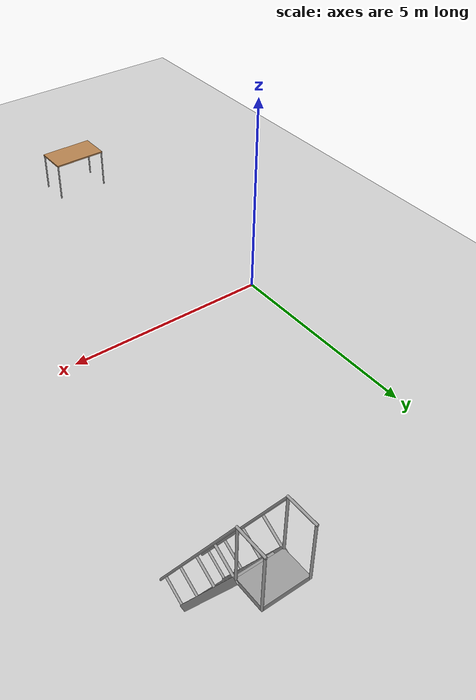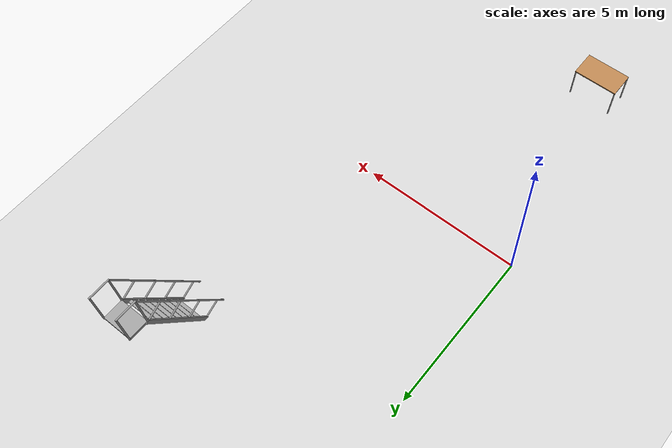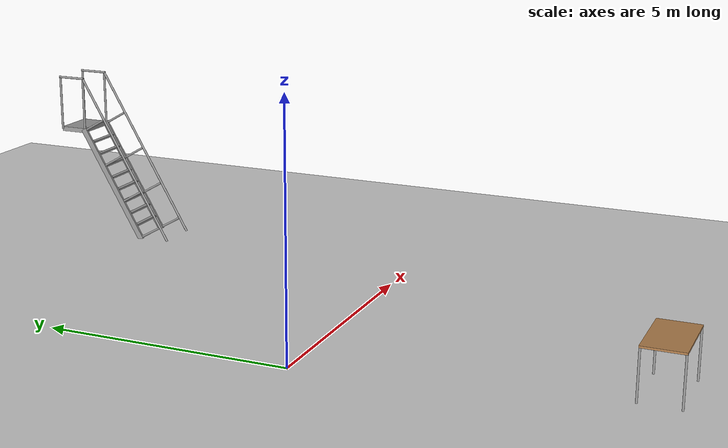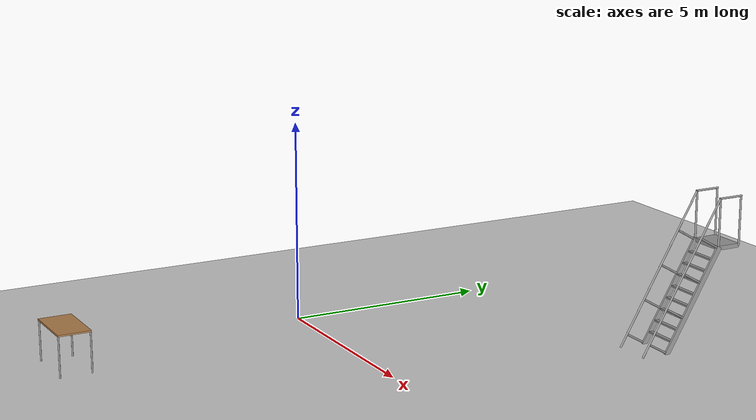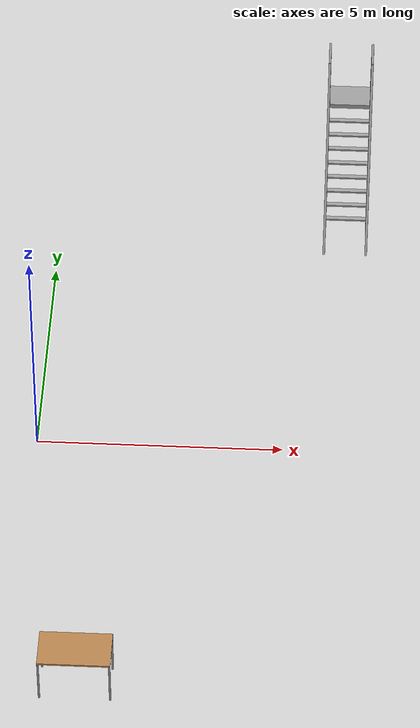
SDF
<sdf version="1.6">
 <world name="default">
  <light name="sun" type="directional">
   <pose>0 0 10 0 -0 0</pose>
   <diffuse>0.8 0.8 0.8 1</diffuse>
   <specular>0.1 0.1 0.1 1</specular>
   <attenuation>
    <range>1000</range>
    <constant>0.9</constant>
    <linear>0.01</linear>
    <quadratic>0.001</quadratic>
   </attenuation>
   <direction>-0.5 0.5 -1</direction>
  </light>
  <model name="ground_plane">
   <static>1</static>
   <link name="link">
    <collision name="collision">
     <geometry><plane><normal>0 0 1</normal><size>100 100</size></plane></geometry>
     <surface><friction><ode><mu>100</mu><mu2>50</mu2></ode></friction></surface>
    </collision>
    <visual name="visual">
     <cast_shadows>0</cast_shadows>
     <geometry><plane><normal>0 0 1</normal><size>100 100</size></plane></geometry>
     <material>
      <script><uri>file://media/materials/scripts/gazebo.material</uri><name>Gazebo/Grey</name></script>
     </material>
    </visual>
   </link>
  </model>
  <gravity>0 0 -9.8</gravity>
  <magnetic_field>6e-06 2.3e-05 -4.2e-05</magnetic_field>
  <atmosphere type="adiabatic"/>
  <physics name="default_physics" default="0" type="ode">
   <max_step_size>0.001</max_step_size>
   <real_time_factor>1</real_time_factor>
   <real_time_update_rate>1000</real_time_update_rate>
  </physics>
  <scene><ambient>0.4 0.4 0.4 1</ambient><background>0.7 0.7 0.7 1</background><shadows>1</shadows></scene>
  <spherical_coordinates>
   <surface_model>EARTH_WGS84</surface_model>
   <latitude_deg>0</latitude_deg>
   <longitude_deg>0</longitude_deg>
   <elevation>0</elevation>
   <heading_deg>0</heading_deg>
  </spherical_coordinates>
  <model name="table">
   <static>0</static>
   <link name="link">
    <collision name="surface">
     <pose>0 0 1 0 -0 0</pose>
     <geometry><box><size>1.5 0.8 0.03</size></box></geometry>
     <surface><friction><ode><mu>0.6</mu><mu2>0.6</mu2></ode></friction></surface>
    </collision>
    <visual name="visual1">
     <pose>0 0 1 0 -0 0</pose>
     <geometry><box><size>1.4 0.8 0.04</size></box></geometry>
     <material>
      <script><uri>file://media/materials/scripts/gazebo.material</uri><name>Gazebo/Wood</name></script>
     </material>
    </visual>
    <collision name="front_left_leg">
     <pose>0.68 0.38 0.5 0 -0 0</pose>
     <geometry><cylinder><radius>0.02</radius><length>1</length></cylinder></geometry>
    </collision>
    <visual name="front_left_leg">
     <pose>0.68 0.38 0.5 0 -0 0</pose>
     <geometry><cylinder><radius>0.02</radius><length>1</length></cylinder></geometry>
     <material>
      <script><uri>file://media/materials/scripts/gazebo.material</uri><name>Gazebo/Grey</name></script>
     </material>
    </visual>
    <collision name="front_right_leg">
     <pose>0.68 -0.38 0.5 0 -0 0</pose>
     <geometry><cylinder><radius>0.02</radius><length>1</length></cylinder></geometry>
    </collision>
    <visual name="front_right_leg">
     <pose>0.68 -0.38 0.5 0 -0 0</pose>
     <geometry><cylinder><radius>0.02</radius><length>1</length></cylinder></geometry>
     <material>
      <script><uri>file://media/materials/scripts/gazebo.material</uri><name>Gazebo/Grey</name></script>
     </material>
    </visual>
    <collision name="back_right_leg">
     <pose>-0.68 -0.38 0.5 0 -0 0</pose>
     <geometry><cylinder><radius>0.02</radius><length>1</length></cylinder></geometry>
    </collision>
    <visual name="back_right_leg">
     <pose>-0.68 -0.38 0.5 0 -0 0</pose>
     <geometry><cylinder><radius>0.02</radius><length>1</length></cylinder></geometry>
     <material>
      <script><uri>file://media/materials/scripts/gazebo.material</uri><name>Gazebo/Grey</name></script>
     </material>
    </visual>
    <collision name="back_left_leg">
     <pose>-0.68 0.38 0.5 0 -0 0</pose>
     <geometry><cylinder><radius>0.02</radius><length>1</length></cylinder></geometry>
    </collision>
    <visual name="back_left_leg">
     <pose>-0.68 0.38 0.5 0 -0 0</pose>
     <geometry><cylinder><radius>0.02</radius><length>1</length></cylinder></geometry>
     <material>
      <script><uri>file://media/materials/scripts/gazebo.material</uri><name>Gazebo/Grey</name></script>
     </material>
    </visual>
    <inertial>
     <inertia><ixx>1</ixx><ixy>0</ixy><ixz>0</ixz><iyy>1</iyy><iyz>0</iyz><izz>1</izz></inertia>
     <mass>1</mass>
    </inertial>
   </link>
   <pose>1.26553 -6.47064 0.189794 -2e-06 4e-06 0</pose>
  </model>
  <model name="ladder_60deg_2rails">
   <static>1</static>
   <link name="step0">
    <pose>0 0.15396 0.266667 0 -0 0</pose>
    <inertial>
     <mass>9.75482</mass>
     <inertia>
      <ixx>0.00957124</ixx>
      <iyy>0.65963</iyy>
      <izz>0.666842</izz>
      <ixy>0</ixy>
      <ixz>0</ixz>
      <iyz>0</iyz>
     </inertia>
    </inertial>
    <collision name="collision"><geometry><box><size>0.9 0.1016 0.0381</size></box></geometry></collision>
    <visual name="visual">
     <geometry><box><size>0.9 0.1016 0.0381</size></box></geometry>
     <material>
      <script><uri>file://media/materials/scripts/gazebo.material</uri><name>Gazebo/Grey</name></script>
     </material>
    </visual>
   </link>
   <link name="step1">
    <pose>0 0.30792 0.533333 0 -0 0</pose>
    <inertial>
     <mass>9.75482</mass>
     <inertia>
      <ixx>0.00957124</ixx>
      <iyy>0.65963</iyy>
      <izz>0.666842</izz>
      <ixy>0</ixy>
      <ixz>0</ixz>
      <iyz>0</iyz>
     </inertia>
    </inertial>
    <collision name="collision"><geometry><box><size>0.9 0.1016 0.0381</size></box></geometry></collision>
    <visual name="visual">
     <geometry><box><size>0.9 0.1016 0.0381</size></box></geometry>
     <material>
      <script><uri>file://media/materials/scripts/gazebo.material</uri><name>Gazebo/Grey</name></script>
     </material>
    </visual>
   </link>
   <link name="step2">
    <pose>0 0.46188 0.8 0 -0 0</pose>
    <inertial>
     <mass>9.75482</mass>
     <inertia>
      <ixx>0.00957124</ixx>
      <iyy>0.65963</iyy>
      <izz>0.666842</izz>
      <ixy>0</ixy>
      <ixz>0</ixz>
      <iyz>0</iyz>
     </inertia>
    </inertial>
    <collision name="collision"><geometry><box><size>0.9 0.1016 0.0381</size></box></geometry></collision>
    <visual name="visual">
     <geometry><box><size>0.9 0.1016 0.0381</size></box></geometry>
     <material>
      <script><uri>file://media/materials/scripts/gazebo.material</uri><name>Gazebo/Grey</name></script>
     </material>
    </visual>
   </link>
   <link name="step3">
    <pose>0 0.61584 1.06667 0 -0 0</pose>
    <inertial>
     <mass>9.75482</mass>
     <inertia>
      <ixx>0.00957124</ixx>
      <iyy>0.65963</iyy>
      <izz>0.666842</izz>
      <ixy>0</ixy>
      <ixz>0</ixz>
      <iyz>0</iyz>
     </inertia>
    </inertial>
    <collision name="collision"><geometry><box><size>0.9 0.1016 0.0381</size></box></geometry></collision>
    <visual name="visual">
     <geometry><box><size>0.9 0.1016 0.0381</size></box></geometry>
     <material>
      <script><uri>file://media/materials/scripts/gazebo.material</uri><name>Gazebo/Grey</name></script>
     </material>
    </visual>
   </link>
   <link name="step4">
    <pose>0 0.7698 1.33333 0 -0 0</pose>
    <inertial>
     <mass>9.75482</mass>
     <inertia>
      <ixx>0.00957124</ixx>
      <iyy>0.65963</iyy>
      <izz>0.666842</izz>
      <ixy>0</ixy>
      <ixz>0</ixz>
      <iyz>0</iyz>
     </inertia>
    </inertial>
    <collision name="collision"><geometry><box><size>0.9 0.1016 0.0381</size></box></geometry></collision>
    <visual name="visual">
     <geometry><box><size>0.9 0.1016 0.0381</size></box></geometry>
     <material>
      <script><uri>file://media/materials/scripts/gazebo.material</uri><name>Gazebo/Grey</name></script>
     </material>
    </visual>
   </link>
   <link name="step5">
    <pose>0 0.92376 1.6 0 -0 0</pose>
    <inertial>
     <mass>9.75482</mass>
     <inertia>
      <ixx>0.00957124</ixx>
      <iyy>0.65963</iyy>
      <izz>0.666842</izz>
      <ixy>0</ixy>
      <ixz>0</ixz>
      <iyz>0</iyz>
     </inertia>
    </inertial>
    <collision name="collision"><geometry><box><size>0.9 0.1016 0.0381</size></box></geometry></collision>
    <visual name="visual">
     <geometry><box><size>0.9 0.1016 0.0381</size></box></geometry>
     <material>
      <script><uri>file://media/materials/scripts/gazebo.material</uri><name>Gazebo/Grey</name></script>
     </material>
    </visual>
   </link>
   <link name="step6">
    <pose>0 1.07772 1.86667 0 -0 0</pose>
    <inertial>
     <mass>9.75482</mass>
     <inertia>
      <ixx>0.00957124</ixx>
      <iyy>0.65963</iyy>
      <izz>0.666842</izz>
      <ixy>0</ixy>
      <ixz>0</ixz>
      <iyz>0</iyz>
     </inertia>
    </inertial>
    <collision name="collision"><geometry><box><size>0.9 0.1016 0.0381</size></box></geometry></collision>
    <visual name="visual">
     <geometry><box><size>0.9 0.1016 0.0381</size></box></geometry>
     <material>
      <script><uri>file://media/materials/scripts/gazebo.material</uri><name>Gazebo/Grey</name></script>
     </material>
    </visual>
   </link>
   <link name="step7">
    <pose>0 1.23168 2.13333 0 -0 0</pose>
    <inertial>
     <mass>9.75482</mass>
     <inertia>
      <ixx>0.00957124</ixx>
      <iyy>0.65963</iyy>
      <izz>0.666842</izz>
      <ixy>0</ixy>
      <ixz>0</ixz>
      <iyz>0</iyz>
     </inertia>
    </inertial>
    <collision name="collision"><geometry><box><size>0.9 0.1016 0.0381</size></box></geometry></collision>
    <visual name="visual">
     <geometry><box><size>0.9 0.1016 0.0381</size></box></geometry>
     <material>
      <script><uri>file://media/materials/scripts/gazebo.material</uri><name>Gazebo/Grey</name></script>
     </material>
    </visual>
   </link>
   <link name="landing">
    <pose>0 1.68564 2.4 0 -0 0</pose>
    <inertial>
     <mass>57.6072</mass>
     <inertia><ixx>1.73518</ixx><iyy>3.89545</iyy><izz>5.6167</izz><ixy>0</ixy><ixz>0</ixz><iyz>0</iyz></inertia>
    </inertial>
    <collision name="collision"><geometry><box><size>0.9 0.6 0.1016</size></box></geometry></collision>
    <visual name="visual">
     <geometry><box><size>0.9 0.6 0.1016</size></box></geometry>
     <material>
      <script><uri>file://media/materials/scripts/gazebo.material</uri><name>Gazebo/Grey</name></script>
     </material>
    </visual>
   </link>
   <link name="left_side_wall">
    <pose>-0.45 0.69282 1.2 1.0472 -0 0</pose>
    <collision name="collision"><geometry><box><size>0.0508 2.85128 0.13</size></box></geometry></collision>
    <visual name="visual">
     <geometry><box><size>0.0508 2.85128 0.13</size></box></geometry>
     <material>
      <script><uri>file://media/materials/scripts/gazebo.material</uri><name>Gazebo/Grey</name></script>
     </material>
    </visual>
   </link>
   <link name="right_side_wall">
    <pose>0.45 0.69282 1.2 1.0472 -0 0</pose>
    <collision name="collision"><geometry><box><size>0.0508 2.85128 0.13</size></box></geometry></collision>
    <visual name="visual">
     <geometry><box><size>0.0508 2.85128 0.13</size></box></geometry>
     <material>
      <script><uri>file://media/materials/scripts/gazebo.material</uri><name>Gazebo/Grey</name></script>
     </material>
    </visual>
   </link>
   <link name="left_railing_long">
    <pose>-0.45 0.34282 1.80622 -0.523599 0 0</pose>
    <collision name="collision">
     <geometry><cylinder><radius>0.02413</radius><length>4.17128</length></cylinder></geometry>
    </collision>
    <visual name="visual">
     <geometry><cylinder><radius>0.02413</radius><length>4.17128</length></cylinder></geometry>
     <material>
      <script><uri>file://media/materials/scripts/gazebo.material</uri><name>Gazebo/Grey</name></script>
     </material>
    </visual>
   </link>
   <link name="left_railing_upright0">
    <pose>-0.45 -0.274963 0.15875 1.0472 -0 0</pose>
    <collision name="collision">
     <geometry><cylinder><radius>0.02413</radius><length>0.541218</length></cylinder></geometry>
    </collision>
    <visual name="visual">
     <geometry><cylinder><radius>0.02413</radius><length>0.541218</length></cylinder></geometry>
     <material>
      <script><uri>file://media/materials/scripts/gazebo.material</uri><name>Gazebo/Grey</name></script>
     </material>
    </visual>
   </link>
   <link name="left_railing_upright1">
    <pose>-0.45 0.186917 0.95875 1.0472 -0 0</pose>
    <collision name="collision">
     <geometry><cylinder><radius>0.02413</radius><length>0.541218</length></cylinder></geometry>
    </collision>
    <visual name="visual">
     <geometry><cylinder><radius>0.02413</radius><length>0.541218</length></cylinder></geometry>
     <material>
      <script><uri>file://media/materials/scripts/gazebo.material</uri><name>Gazebo/Grey</name></script>
     </material>
    </visual>
   </link>
   <link name="left_railing_upright2">
    <pose>-0.45 0.648797 1.75875 1.0472 -0 0</pose>
    <collision name="collision">
     <geometry><cylinder><radius>0.02413</radius><length>0.541218</length></cylinder></geometry>
    </collision>
    <visual name="visual">
     <geometry><cylinder><radius>0.02413</radius><length>0.541218</length></cylinder></geometry>
     <material>
      <script><uri>file://media/materials/scripts/gazebo.material</uri><name>Gazebo/Grey</name></script>
     </material>
    </visual>
   </link>
   <link name="left_railing_upright3">
    <pose>-0.45 1.11068 2.55875 1.0472 -0 0</pose>
    <collision name="collision">
     <geometry><cylinder><radius>0.02413</radius><length>0.541218</length></cylinder></geometry>
    </collision>
    <visual name="visual">
     <geometry><cylinder><radius>0.02413</radius><length>0.541218</length></cylinder></geometry>
     <material>
      <script><uri>file://media/materials/scripts/gazebo.material</uri><name>Gazebo/Grey</name></script>
     </material>
    </visual>
   </link>
   <link name="left_railing_landing_top">
    <pose>-0.45 1.68564 3.61244 1.5708 -0 0</pose>
    <collision name="collision">
     <geometry><cylinder><radius>0.02413</radius><length>0.64826</length></cylinder></geometry>
    </collision>
    <visual name="visual">
     <geometry><cylinder><radius>0.02413</radius><length>0.64826</length></cylinder></geometry>
     <material>
      <script><uri>file://media/materials/scripts/gazebo.material</uri><name>Gazebo/Grey</name></script>
     </material>
    </visual>
   </link>
   <link name="left_railing_landing_upright_0">
    <pose>-0.45 1.38564 3.00622 0 -0 0</pose>
    <collision name="collision">
     <geometry><cylinder><radius>0.02413</radius><length>1.21244</length></cylinder></geometry>
    </collision>
    <visual name="visual">
     <geometry><cylinder><radius>0.02413</radius><length>1.21244</length></cylinder></geometry>
     <material>
      <script><uri>file://media/materials/scripts/gazebo.material</uri><name>Gazebo/Grey</name></script>
     </material>
    </visual>
   </link>
   <link name="left_railing_landing_upright_1">
    <pose>-0.45 1.98564 3.00622 0 -0 0</pose>
    <collision name="collision">
     <geometry><cylinder><radius>0.02413</radius><length>1.21244</length></cylinder></geometry>
    </collision>
    <visual name="visual">
     <geometry><cylinder><radius>0.02413</radius><length>1.21244</length></cylinder></geometry>
     <material>
      <script><uri>file://media/materials/scripts/gazebo.material</uri><name>Gazebo/Grey</name></script>
     </material>
    </visual>
   </link>
   <link name="right_railing_long">
    <pose>0.45 0.34282 1.80622 -0.523599 0 0</pose>
    <collision name="collision">
     <geometry><cylinder><radius>0.02413</radius><length>4.17128</length></cylinder></geometry>
    </collision>
    <visual name="visual">
     <geometry><cylinder><radius>0.02413</radius><length>4.17128</length></cylinder></geometry>
     <material>
      <script><uri>file://media/materials/scripts/gazebo.material</uri><name>Gazebo/Grey</name></script>
     </material>
    </visual>
   </link>
   <link name="right_railing_upright0">
    <pose>0.45 -0.274963 0.15875 1.0472 -0 0</pose>
    <collision name="collision">
     <geometry><cylinder><radius>0.02413</radius><length>0.541218</length></cylinder></geometry>
    </collision>
    <visual name="visual">
     <geometry><cylinder><radius>0.02413</radius><length>0.541218</length></cylinder></geometry>
     <material>
      <script><uri>file://media/materials/scripts/gazebo.material</uri><name>Gazebo/Grey</name></script>
     </material>
    </visual>
   </link>
   <link name="right_railing_upright1">
    <pose>0.45 0.186917 0.95875 1.0472 -0 0</pose>
    <collision name="collision">
     <geometry><cylinder><radius>0.02413</radius><length>0.541218</length></cylinder></geometry>
    </collision>
    <visual name="visual">
     <geometry><cylinder><radius>0.02413</radius><length>0.541218</length></cylinder></geometry>
     <material>
      <script><uri>file://media/materials/scripts/gazebo.material</uri><name>Gazebo/Grey</name></script>
     </material>
    </visual>
   </link>
   <link name="right_railing_upright2">
    <pose>0.45 0.648797 1.75875 1.0472 -0 0</pose>
    <collision name="collision">
     <geometry><cylinder><radius>0.02413</radius><length>0.541218</length></cylinder></geometry>
    </collision>
    <visual name="visual">
     <geometry><cylinder><radius>0.02413</radius><length>0.541218</length></cylinder></geometry>
     <material>
      <script><uri>file://media/materials/scripts/gazebo.material</uri><name>Gazebo/Grey</name></script>
     </material>
    </visual>
   </link>
   <link name="right_railing_upright3">
    <pose>0.45 1.11068 2.55875 1.0472 -0 0</pose>
    <collision name="collision">
     <geometry><cylinder><radius>0.02413</radius><length>0.541218</length></cylinder></geometry>
    </collision>
    <visual name="visual">
     <geometry><cylinder><radius>0.02413</radius><length>0.541218</length></cylinder></geometry>
     <material>
      <script><uri>file://media/materials/scripts/gazebo.material</uri><name>Gazebo/Grey</name></script>
     </material>
    </visual>
   </link>
   <link name="right_railing_landing_top">
    <pose>0.45 1.68564 3.61244 1.5708 -0 0</pose>
    <collision name="collision">
     <geometry><cylinder><radius>0.02413</radius><length>0.64826</length></cylinder></geometry>
    </collision>
    <visual name="visual">
     <geometry><cylinder><radius>0.02413</radius><length>0.64826</length></cylinder></geometry>
     <material>
      <script><uri>file://media/materials/scripts/gazebo.material</uri><name>Gazebo/Grey</name></script>
     </material>
    </visual>
   </link>
   <link name="right_railing_landing_upright_0">
    <pose>0.45 1.38564 3.00622 0 -0 0</pose>
    <collision name="collision">
     <geometry><cylinder><radius>0.02413</radius><length>1.21244</length></cylinder></geometry>
    </collision>
    <visual name="visual">
     <geometry><cylinder><radius>0.02413</radius><length>1.21244</length></cylinder></geometry>
     <material>
      <script><uri>file://media/materials/scripts/gazebo.material</uri><name>Gazebo/Grey</name></script>
     </material>
    </visual>
   </link>
   <link name="right_railing_landing_upright_1">
    <pose>0.45 1.98564 3.00622 0 -0 0</pose>
    <collision name="collision">
     <geometry><cylinder><radius>0.02413</radius><length>1.21244</length></cylinder></geometry>
    </collision>
    <visual name="visual">
     <geometry><cylinder><radius>0.02413</radius><length>1.21244</length></cylinder></geometry>
     <material>
      <script><uri>file://media/materials/scripts/gazebo.material</uri><name>Gazebo/Grey</name></script>
     </material>
    </visual>
   </link>
   <pose>6.14923 6.4978 0 0 -0 0</pose>
  </model>
 </world>
</sdf>
